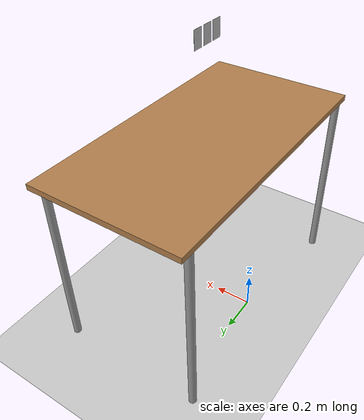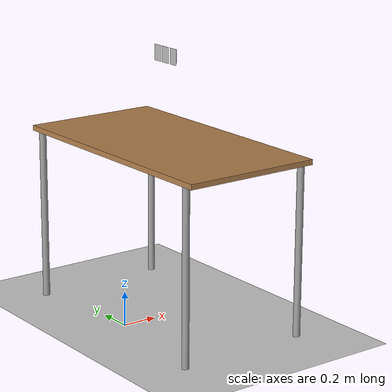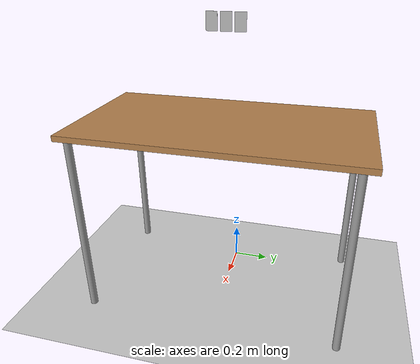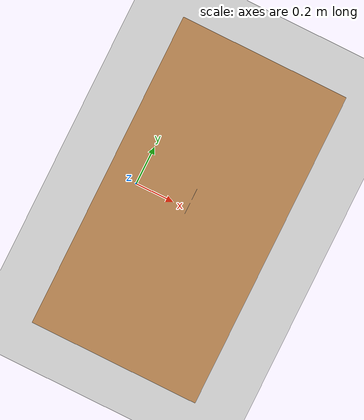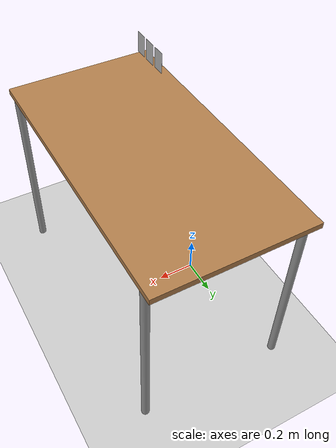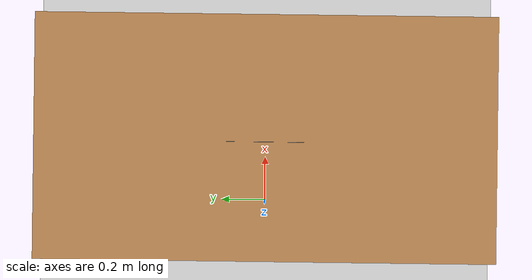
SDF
<?xml version="1.0" ?>
<sdf version="1.6">
  <world name="CRANE-X7 with Table">

    <include>
      <uri>model://sun</uri>
    </include>

    <model name="table">
      <include>
        <uri>model://table</uri>
      </include>

      <!-- X7を机の端に配置するため、机を移動、回転する -->
      <pose>0.29 0 0 0 0 1.5708</pose>
    </model>

     <model name="card0">
      <pose>0.28 0 1.5 0 0 0</pose>
       <link name="link">
	       <inertial>
		<mass>0.01</mass>
		<inertia>
			<ixx>0.083</ixx>
			<ixy>0.0</ixy>
			<ixz>0.0</ixz>
			<iyy>0.083</iyy>
			<iyz>0.0</iyz>
			<izz>0.083</izz>
		</inertia>
	      </inertial>
      	      <collision name="collision">
		<geometry>
  			<box>
				<size>0.0003 0.057 0.089</size>
			</box>
		</geometry>
	      </collision>
	      <visual name="visual">
		<geometry>
	  	<box>
		<size>0.0003 0.057 0.089</size>
		</box>
		</geometry>
		</visual>
	</link>
</model>

<model name="card1">
      <pose>0.28 0.07 1.5 0 0 0</pose>
       <link name="link">
               <inertial>
                <mass>0.01</mass>
                <inertia>
                        <ixx>0.083</ixx>
                        <ixy>0.0</ixy>
                        <ixz>0.0</ixz>
                        <iyy>0.083</iyy>
                        <iyz>0.0</iyz>
                        <izz>0.083</izz>
                </inertia>
              </inertial>
              <collision name="collision">
                <geometry>
                        <box>
                                <size>0.0003 0.057 0.089</size>
                        </box>
                </geometry>
              </collision>
              <visual name="visual">
                <geometry>
                <box>
                <size>0.0003 0.057 0.089</size>
                </box>
                </geometry>
                </visual>
        </link>
</model>

<model name="card2">
      <pose>0.28 -0.07 1.5 0 0 0</pose>
       <link name="link">
               <inertial>
                <mass>0.01</mass>
                <inertia>
                        <ixx>0.083</ixx>
                        <ixy>0.0</ixy>
                        <ixz>0.0</ixz>
                        <iyy>0.083</iyy>
                        <iyz>0.0</iyz>
                        <izz>0.083</izz>
                </inertia>
              </inertial>
              <collision name="collision">
                <geometry>
                        <box>
                                <size>0.0003 0.057 0.089</size>
                        </box>
                </geometry>
              </collision>
              <visual name="visual">
                <geometry>
                <box>
                <size>0.0003 0.057 0.089</size>
                </box>
                </geometry>
                </visual>
        </link>
</model>

    <model name="ground_plane">
      <include>
        <uri>model://ground_plane</uri>
      </include>

      <joint name='ground_joint' type='fixed'>
        <parent>ground_plane::link</parent>
        <child>table::link</child>
      </joint>
    </model>
  </world>
</sdf>

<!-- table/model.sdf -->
<sdf version="1.5">
  <model name="table">
    <static>true</static>
    <link name="link">
      <collision name="surface">
        <pose>0 0 1.0 0 0 0</pose>
        <geometry>
          <box>
            <size>1.5 0.8 0.03</size>
          </box>
        </geometry>
        <surface>
          <friction>
            <ode>
              <mu>0.6</mu>
              <mu2>0.6</mu2>
            </ode>
          </friction>
        </surface>
      </collision>
      <visual name="visual1">
        <pose>0 0 1.0 0 0 0</pose>
        <geometry>
          <box>
            <size>1.5 0.8 0.03</size>
          </box>
        </geometry>
        <material>
          <script>
            <uri>model://media/materials/scripts/gazebo.material</uri>
            <name>Gazebo/Wood</name>
          </script>
        </material>
      </visual>
      <collision name="front_left_leg">
        <pose>0.68 0.38 0.5 0 0 0</pose>
        <geometry>
          <cylinder>
            <radius>0.02</radius>
            <length>1.0</length>
          </cylinder>
        </geometry>
      </collision>
      <visual name="front_left_leg">
        <pose>0.68 0.38 0.5 0 0 0</pose>
        <geometry>
          <cylinder>
            <radius>0.02</radius>
            <length>1.0</length>
          </cylinder>
        </geometry>
        <material>
          <script>
            <uri>model://media/materials/scripts/gazebo.material</uri>
            <name>Gazebo/Grey</name>
          </script>
        </material>
      </visual>
      <collision name="front_right_leg">
        <pose>0.68 -0.38 0.5 0 0 0</pose>
        <geometry>
          <cylinder>
            <radius>0.02</radius>
            <length>1.0</length>
          </cylinder>
        </geometry>
      </collision>
      <visual name="front_right_leg">
        <pose>0.68 -0.38 0.5 0 0 0</pose>
        <geometry>
          <cylinder>
            <radius>0.02</radius>
            <length>1.0</length>
          </cylinder>
        </geometry>
        <material>
          <script>
            <uri>model://media/materials/scripts/gazebo.material</uri>
            <name>Gazebo/Grey</name>
          </script>
        </material>
      </visual>
      <collision name="back_right_leg">
        <pose>-0.68 -0.38 0.5 0 0 0</pose>
        <geometry>
          <cylinder>
            <radius>0.02</radius>
            <length>1.0</length>
          </cylinder>
        </geometry>
      </collision>
      <visual name="back_right_leg">
        <pose>-0.68 -0.38 0.5 0 0 0</pose>
        <geometry>
          <cylinder>
            <radius>0.02</radius>
            <length>1.0</length>
          </cylinder>
        </geometry>
        <material>
          <script>
            <uri>model://media/materials/scripts/gazebo.material</uri>
            <name>Gazebo/Grey</name>
          </script>
        </material>
      </visual>
      <collision name="back_left_leg">
        <pose>-0.68 0.38 0.5 0 0 0</pose>
        <geometry>
          <cylinder>
            <radius>0.02</radius>
            <length>1.0</length>
          </cylinder>
        </geometry>
      </collision>
      <visual name="back_left_leg">
        <pose>-0.68 0.38 0.5 0 0 0</pose>
        <geometry>
          <cylinder>
            <radius>0.02</radius>
            <length>1.0</length>
          </cylinder>
        </geometry>
        <material>
          <script>
            <uri>model://media/materials/scripts/gazebo.material</uri>
            <name>Gazebo/Grey</name>
          </script>
        </material>
      </visual>
    </link>
  </model>
</sdf>
